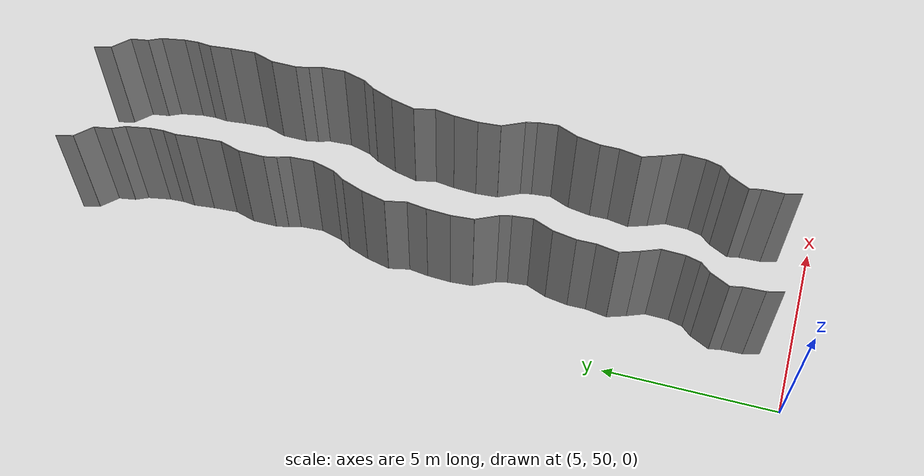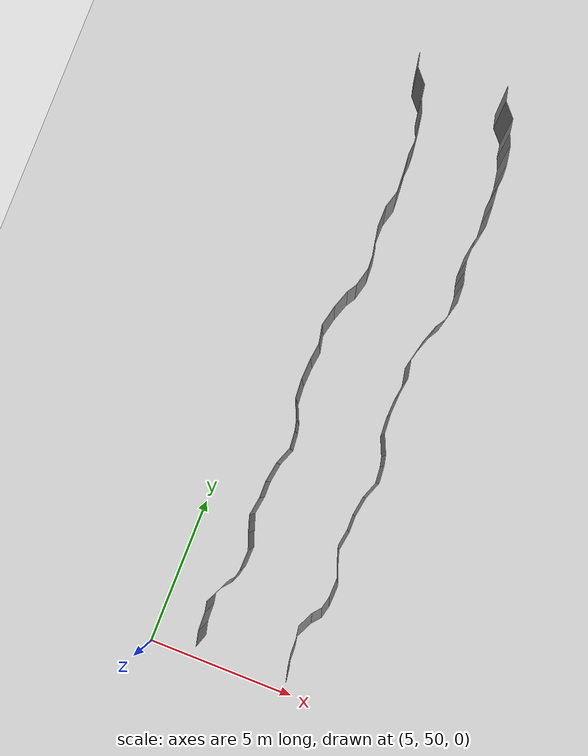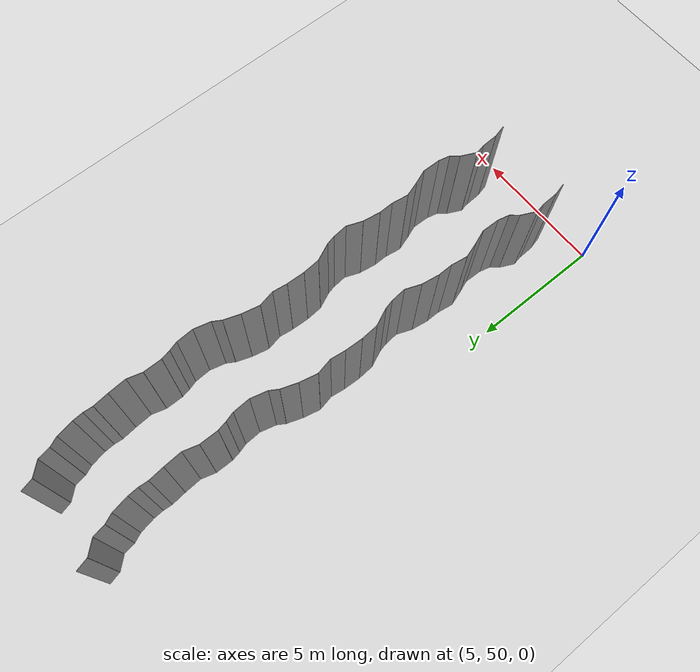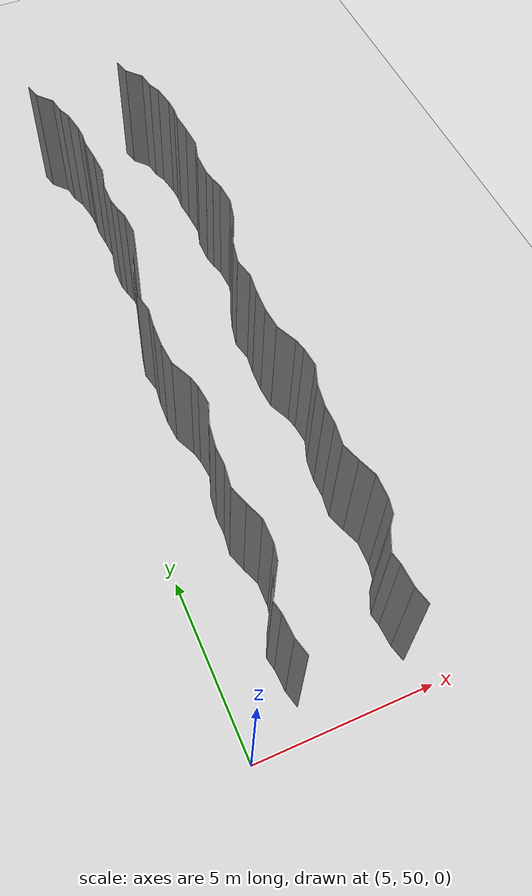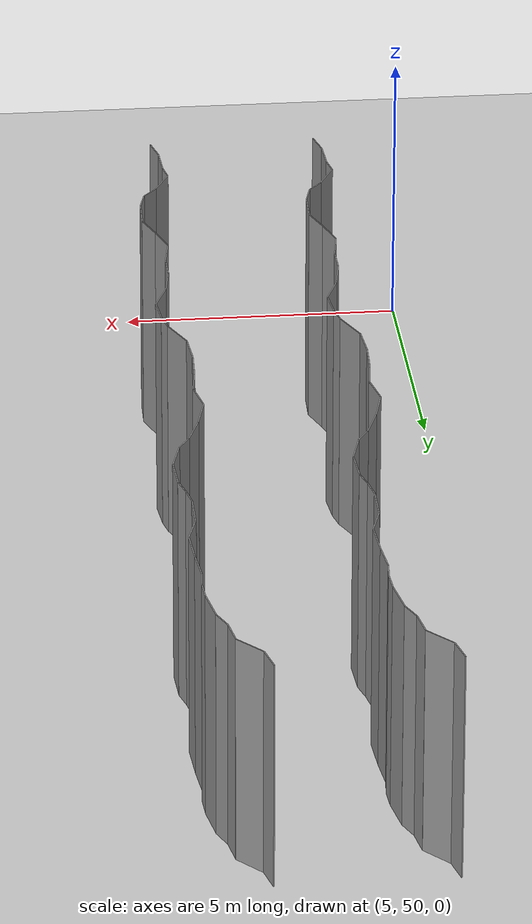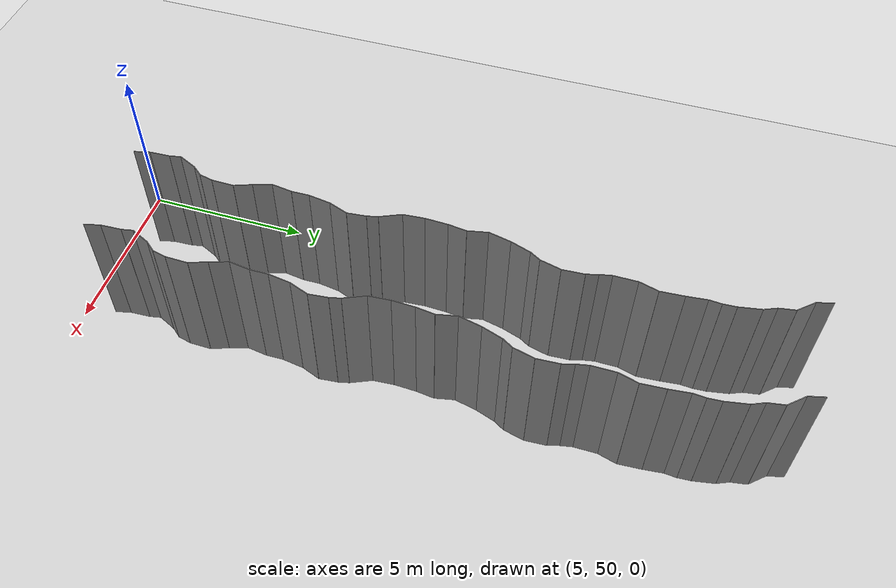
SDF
<sdf version="1.6">
 <world name="default">
  <model name="ground_plane">
   <static>1</static>
   <link name="link">
    <collision name="collision">
     <geometry><plane><normal>0 0 1</normal><size>200 200</size></plane></geometry>
     <surface><friction><ode><mu>100</mu><mu2>50</mu2></ode></friction></surface>
    </collision>
    <visual name="visual">
     <cast_shadows>0</cast_shadows>
     <geometry><plane><normal>0 0 1</normal><size>200 200</size></plane></geometry>
     <material>
      <script><uri>file://media/materials/scripts/gazebo.material</uri><name>Gazebo/Grey</name></script>
     </material>
    </visual>
   </link>
   <pose>0 100 0 0 -0 0</pose>
  </model>
  <model name="wall_224">
   <static>1</static>
   <pose>6.56225825882392 51.06435215421746 2 0 0 0.24001615985615504</pose>
   <link name="link">
    <collision name="collision"><geometry><box><size>0.02 0.481086561576 4</size></box></geometry></collision>
    <visual name="visual">
     <material>
      <script><name>Gazebo/Grey</name><uri>file://media/materials/scripts/gazebo.material</uri></script>
     </material>
     <geometry><box><size>0.02 0.481086561576 4</size></box></geometry>
    </visual>
   </link>
  </model>
  <model name="wall_225">
   <static>1</static>
   <pose>9.56225825882392 51.06435215421746 2 0 0 0.24001615985615504</pose>
   <link name="link">
    <collision name="collision"><geometry><box><size>0.02 0.481086561576 4</size></box></geometry></collision>
    <visual name="visual">
     <material>
      <script><name>Gazebo/Grey</name><uri>file://media/materials/scripts/gazebo.material</uri></script>
     </material>
     <geometry><box><size>0.02 0.481086561576 4</size></box></geometry>
    </visual>
   </link>
  </model>
  <model name="wall_226">
   <static>1</static>
   <pose>6.49260334359327 51.6056390805103 2 0 0 0.04052327693345277</pose>
   <link name="link">
    <collision name="collision"><geometry><box><size>0.02 0.61578358517 4</size></box></geometry></collision>
    <visual name="visual">
     <material>
      <script><name>Gazebo/Grey</name><uri>file://media/materials/scripts/gazebo.material</uri></script>
     </material>
     <geometry><box><size>0.02 0.61578358517 4</size></box></geometry>
    </visual>
   </link>
  </model>
  <model name="wall_227">
   <static>1</static>
   <pose>9.49260334359327 51.6056390805103 2 0 0 0.04052327693345277</pose>
   <link name="link">
    <collision name="collision"><geometry><box><size>0.02 0.61578358517 4</size></box></geometry></collision>
    <visual name="visual">
     <material>
      <script><name>Gazebo/Grey</name><uri>file://media/materials/scripts/gazebo.material</uri></script>
     </material>
     <geometry><box><size>0.02 0.61578358517 4</size></box></geometry>
    </visual>
   </link>
  </model>
  <model name="wall_228">
   <static>1</static>
   <pose>6.447315650950986 52.08109702309293 2 0 0 0.1930977729076564</pose>
   <link name="link">
    <collision name="collision"><geometry><box><size>0.02 0.341993965893 4</size></box></geometry></collision>
    <visual name="visual">
     <material>
      <script><name>Gazebo/Grey</name><uri>file://media/materials/scripts/gazebo.material</uri></script>
     </material>
     <geometry><box><size>0.02 0.341993965893 4</size></box></geometry>
    </visual>
   </link>
  </model>
  <model name="wall_229">
   <static>1</static>
   <pose>9.447315650950987 52.08109702309293 2 0 0 0.1930977729076564</pose>
   <link name="link">
    <collision name="collision"><geometry><box><size>0.02 0.341993965893 4</size></box></geometry></collision>
    <visual name="visual">
     <material>
      <script><name>Gazebo/Grey</name><uri>file://media/materials/scripts/gazebo.material</uri></script>
     </material>
     <geometry><box><size>0.02 0.341993965893 4</size></box></geometry>
    </visual>
   </link>
  </model>
  <model name="wall_230">
   <static>1</static>
   <pose>6.547434443843043 52.52884204708315 2 0 0 -0.4433556849081767</pose>
   <link name="link">
    <collision name="collision"><geometry><box><size>0.02 0.619773634317 4</size></box></geometry></collision>
    <visual name="visual">
     <material>
      <script><name>Gazebo/Grey</name><uri>file://media/materials/scripts/gazebo.material</uri></script>
     </material>
     <geometry><box><size>0.02 0.619773634317 4</size></box></geometry>
    </visual>
   </link>
  </model>
  <model name="wall_231">
   <static>1</static>
   <pose>9.547434443843043 52.52884204708315 2 0 0 -0.4433556849081767</pose>
   <link name="link">
    <collision name="collision"><geometry><box><size>0.02 0.619773634317 4</size></box></geometry></collision>
    <visual name="visual">
     <material>
      <script><name>Gazebo/Grey</name><uri>file://media/materials/scripts/gazebo.material</uri></script>
     </material>
     <geometry><box><size>0.02 0.619773634317 4</size></box></geometry>
    </visual>
   </link>
  </model>
  <model name="wall_232">
   <static>1</static>
   <pose>6.797629163466704 52.95053965869243 2 0 0 -0.6910583182861567</pose>
   <link name="link">
    <collision name="collision"><geometry><box><size>0.02 0.367964361672 4</size></box></geometry></collision>
    <visual name="visual">
     <material>
      <script><name>Gazebo/Grey</name><uri>file://media/materials/scripts/gazebo.material</uri></script>
     </material>
     <geometry><box><size>0.02 0.367964361672 4</size></box></geometry>
    </visual>
   </link>
  </model>
  <model name="wall_233">
   <static>1</static>
   <pose>9.797629163466704 52.95053965869243 2 0 0 -0.6910583182861567</pose>
   <link name="link">
    <collision name="collision"><geometry><box><size>0.02 0.367964361672 4</size></box></geometry></collision>
    <visual name="visual">
     <material>
      <script><name>Gazebo/Grey</name><uri>file://media/materials/scripts/gazebo.material</uri></script>
     </material>
     <geometry><box><size>0.02 0.367964361672 4</size></box></geometry>
    </visual>
   </link>
  </model>
  <model name="wall_234">
   <static>1</static>
   <pose>6.963732776983516 53.30040594770053 2 0 0 -0.2305374947672329</pose>
   <link name="link">
    <collision name="collision"><geometry><box><size>0.02 0.427499622501 4</size></box></geometry></collision>
    <visual name="visual">
     <material>
      <script><name>Gazebo/Grey</name><uri>file://media/materials/scripts/gazebo.material</uri></script>
     </material>
     <geometry><box><size>0.02 0.427499622501 4</size></box></geometry>
    </visual>
   </link>
  </model>
  <model name="wall_235">
   <static>1</static>
   <pose>9.963732776983516 53.30040594770053 2 0 0 -0.2305374947672329</pose>
   <link name="link">
    <collision name="collision"><geometry><box><size>0.02 0.427499622501 4</size></box></geometry></collision>
    <visual name="visual">
     <material>
      <script><name>Gazebo/Grey</name><uri>file://media/materials/scripts/gazebo.material</uri></script>
     </material>
     <geometry><box><size>0.02 0.427499622501 4</size></box></geometry>
    </visual>
   </link>
  </model>
  <model name="wall_236">
   <static>1</static>
   <pose>7.020929343543368 53.8430620365 2 0 0 -0.024966488987138633</pose>
   <link name="link">
    <collision name="collision"><geometry><box><size>0.02 0.669331200611 4</size></box></geometry></collision>
    <visual name="visual">
     <material>
      <script><name>Gazebo/Grey</name><uri>file://media/materials/scripts/gazebo.material</uri></script>
     </material>
     <geometry><box><size>0.02 0.669331200611 4</size></box></geometry>
    </visual>
   </link>
  </model>
  <model name="wall_237">
   <static>1</static>
   <pose>10.020929343543369 53.8430620365 2 0 0 -0.024966488987138633</pose>
   <link name="link">
    <collision name="collision"><geometry><box><size>0.02 0.669331200611 4</size></box></geometry></collision>
    <visual name="visual">
     <material>
      <script><name>Gazebo/Grey</name><uri>file://media/materials/scripts/gazebo.material</uri></script>
     </material>
     <geometry><box><size>0.02 0.669331200611 4</size></box></geometry>
    </visual>
   </link>
  </model>
  <model name="wall_238">
   <static>1</static>
   <pose>6.9326889899440705 54.43386539276456 2 0 0 0.36049443163937295</pose>
   <link name="link">
    <collision name="collision"><geometry><box><size>0.02 0.547688110757 4</size></box></geometry></collision>
    <visual name="visual">
     <material>
      <script><name>Gazebo/Grey</name><uri>file://media/materials/scripts/gazebo.material</uri></script>
     </material>
     <geometry><box><size>0.02 0.547688110757 4</size></box></geometry>
    </visual>
   </link>
  </model>
  <model name="wall_239">
   <static>1</static>
   <pose>9.93268898994407 54.43386539276456 2 0 0 0.36049443163937295</pose>
   <link name="link">
    <collision name="collision"><geometry><box><size>0.02 0.547688110757 4</size></box></geometry></collision>
    <visual name="visual">
     <material>
      <script><name>Gazebo/Grey</name><uri>file://media/materials/scripts/gazebo.material</uri></script>
     </material>
     <geometry><box><size>0.02 0.547688110757 4</size></box></geometry>
    </visual>
   </link>
  </model>
  <model name="wall_240">
   <static>1</static>
   <pose>6.748785485935234 54.95945755916199 2 0 0 0.3134587258671361</pose>
   <link name="link">
    <collision name="collision"><geometry><box><size>0.02 0.566294177525 4</size></box></geometry></collision>
    <visual name="visual">
     <material>
      <script><name>Gazebo/Grey</name><uri>file://media/materials/scripts/gazebo.material</uri></script>
     </material>
     <geometry><box><size>0.02 0.566294177525 4</size></box></geometry>
    </visual>
   </link>
  </model>
  <model name="wall_241">
   <static>1</static>
   <pose>9.748785485935233 54.95945755916199 2 0 0 0.3134587258671361</pose>
   <link name="link">
    <collision name="collision"><geometry><box><size>0.02 0.566294177525 4</size></box></geometry></collision>
    <visual name="visual">
     <material>
      <script><name>Gazebo/Grey</name><uri>file://media/materials/scripts/gazebo.material</uri></script>
     </material>
     <geometry><box><size>0.02 0.566294177525 4</size></box></geometry>
    </visual>
   </link>
  </model>
  <model name="wall_242">
   <static>1</static>
   <pose>6.708048242945149 55.54079714503761 2 0 0 -0.1481780724822791</pose>
   <link name="link">
    <collision name="collision"><geometry><box><size>0.02 0.630892453073 4</size></box></geometry></collision>
    <visual name="visual">
     <material>
      <script><name>Gazebo/Grey</name><uri>file://media/materials/scripts/gazebo.material</uri></script>
     </material>
     <geometry><box><size>0.02 0.630892453073 4</size></box></geometry>
    </visual>
   </link>
  </model>
  <model name="wall_243">
   <static>1</static>
   <pose>9.70804824294515 55.54079714503761 2 0 0 -0.1481780724822791</pose>
   <link name="link">
    <collision name="collision"><geometry><box><size>0.02 0.630892453073 4</size></box></geometry></collision>
    <visual name="visual">
     <material>
      <script><name>Gazebo/Grey</name><uri>file://media/materials/scripts/gazebo.material</uri></script>
     </material>
     <geometry><box><size>0.02 0.630892453073 4</size></box></geometry>
    </visual>
   </link>
  </model>
  <model name="wall_244">
   <static>1</static>
   <pose>6.751294237429779 56.12126729421162 2 0 0 0.012385196294548095</pose>
   <link name="link">
    <collision name="collision"><geometry><box><size>0.02 0.537002538394 4</size></box></geometry></collision>
    <visual name="visual">
     <material>
      <script><name>Gazebo/Grey</name><uri>file://media/materials/scripts/gazebo.material</uri></script>
     </material>
     <geometry><box><size>0.02 0.537002538394 4</size></box></geometry>
    </visual>
   </link>
  </model>
  <model name="wall_245">
   <static>1</static>
   <pose>9.751294237429779 56.12126729421162 2 0 0 0.012385196294548095</pose>
   <link name="link">
    <collision name="collision"><geometry><box><size>0.02 0.537002538394 4</size></box></geometry></collision>
    <visual name="visual">
     <material>
      <script><name>Gazebo/Grey</name><uri>file://media/materials/scripts/gazebo.material</uri></script>
     </material>
     <geometry><box><size>0.02 0.537002538394 4</size></box></geometry>
    </visual>
   </link>
  </model>
  <model name="wall_246">
   <static>1</static>
   <pose>6.799151793056622 56.72052430702623 2 0 0 -0.15351820116521392</pose>
   <link name="link">
    <collision name="collision"><geometry><box><size>0.02 0.669425649954 4</size></box></geometry></collision>
    <visual name="visual">
     <material>
      <script><name>Gazebo/Grey</name><uri>file://media/materials/scripts/gazebo.material</uri></script>
     </material>
     <geometry><box><size>0.02 0.669425649954 4</size></box></geometry>
    </visual>
   </link>
  </model>
  <model name="wall_247">
   <static>1</static>
   <pose>9.799151793056623 56.72052430702623 2 0 0 -0.15351820116521392</pose>
   <link name="link">
    <collision name="collision"><geometry><box><size>0.02 0.669425649954 4</size></box></geometry></collision>
    <visual name="visual">
     <material>
      <script><name>Gazebo/Grey</name><uri>file://media/materials/scripts/gazebo.material</uri></script>
     </material>
     <geometry><box><size>0.02 0.669425649954 4</size></box></geometry>
    </visual>
   </link>
  </model>
  <model name="wall_248">
   <static>1</static>
   <pose>6.959653735626903 57.338337803056625 2 0 0 -0.36389237350179215</pose>
   <link name="link">
    <collision name="collision"><geometry><box><size>0.02 0.614299540983 4</size></box></geometry></collision>
    <visual name="visual">
     <material>
      <script><name>Gazebo/Grey</name><uri>file://media/materials/scripts/gazebo.material</uri></script>
     </material>
     <geometry><box><size>0.02 0.614299540983 4</size></box></geometry>
    </visual>
   </link>
  </model>
  <model name="wall_249">
   <static>1</static>
   <pose>9.959653735626903 57.338337803056625 2 0 0 -0.36389237350179215</pose>
   <link name="link">
    <collision name="collision"><geometry><box><size>0.02 0.614299540983 4</size></box></geometry></collision>
    <visual name="visual">
     <material>
      <script><name>Gazebo/Grey</name><uri>file://media/materials/scripts/gazebo.material</uri></script>
     </material>
     <geometry><box><size>0.02 0.614299540983 4</size></box></geometry>
    </visual>
   </link>
  </model>
  <model name="wall_250">
   <static>1</static>
   <pose>7.042297827753471 57.911506073202794 2 0 0 0.09295759841057165</pose>
   <link name="link">
    <collision name="collision"><geometry><box><size>0.02 0.574743646551 4</size></box></geometry></collision>
    <visual name="visual">
     <material>
      <script><name>Gazebo/Grey</name><uri>file://media/materials/scripts/gazebo.material</uri></script>
     </material>
     <geometry><box><size>0.02 0.574743646551 4</size></box></geometry>
    </visual>
   </link>
  </model>
  <model name="wall_251">
   <static>1</static>
   <pose>10.04229782775347 57.911506073202794 2 0 0 0.09295759841057165</pose>
   <link name="link">
    <collision name="collision"><geometry><box><size>0.02 0.574743646551 4</size></box></geometry></collision>
    <visual name="visual">
     <material>
      <script><name>Gazebo/Grey</name><uri>file://media/materials/scripts/gazebo.material</uri></script>
     </material>
     <geometry><box><size>0.02 0.574743646551 4</size></box></geometry>
    </visual>
   </link>
  </model>
  <model name="wall_252">
   <static>1</static>
   <pose>6.977258953850956 58.359817805821585 2 0 0 0.23228096914473506</pose>
   <link name="link">
    <collision name="collision"><geometry><box><size>0.02 0.333312740051 4</size></box></geometry></collision>
    <visual name="visual">
     <material>
      <script><name>Gazebo/Grey</name><uri>file://media/materials/scripts/gazebo.material</uri></script>
     </material>
     <geometry><box><size>0.02 0.333312740051 4</size></box></geometry>
    </visual>
   </link>
  </model>
  <model name="wall_253">
   <static>1</static>
   <pose>9.977258953850956 58.359817805821585 2 0 0 0.23228096914473506</pose>
   <link name="link">
    <collision name="collision"><geometry><box><size>0.02 0.333312740051 4</size></box></geometry></collision>
    <visual name="visual">
     <material>
      <script><name>Gazebo/Grey</name><uri>file://media/materials/scripts/gazebo.material</uri></script>
     </material>
     <geometry><box><size>0.02 0.333312740051 4</size></box></geometry>
    </visual>
   </link>
  </model>
  <model name="wall_254">
   <static>1</static>
   <pose>6.7997138775122625 58.832477176896205 2 0 0 0.42142192220837027</pose>
   <link name="link">
    <collision name="collision"><geometry><box><size>0.02 0.680495242348 4</size></box></geometry></collision>
    <visual name="visual">
     <material>
      <script><name>Gazebo/Grey</name><uri>file://media/materials/scripts/gazebo.material</uri></script>
     </material>
     <geometry><box><size>0.02 0.680495242348 4</size></box></geometry>
    </visual>
   </link>
  </model>
  <model name="wall_255">
   <static>1</static>
   <pose>9.799713877512263 58.832477176896205 2 0 0 0.42142192220837027</pose>
   <link name="link">
    <collision name="collision"><geometry><box><size>0.02 0.680495242348 4</size></box></geometry></collision>
    <visual name="visual">
     <material>
      <script><name>Gazebo/Grey</name><uri>file://media/materials/scripts/gazebo.material</uri></script>
     </material>
     <geometry><box><size>0.02 0.680495242348 4</size></box></geometry>
    </visual>
   </link>
  </model>
  <model name="wall_256">
   <static>1</static>
   <pose>6.63759523629764 59.46377560983542 2 0 0 0.07137509578843834</pose>
   <link name="link">
    <collision name="collision"><geometry><box><size>0.02 0.643277229425 4</size></box></geometry></collision>
    <visual name="visual">
     <material>
      <script><name>Gazebo/Grey</name><uri>file://media/materials/scripts/gazebo.material</uri></script>
     </material>
     <geometry><box><size>0.02 0.643277229425 4</size></box></geometry>
    </visual>
   </link>
  </model>
  <model name="wall_257">
   <static>1</static>
   <pose>9.63759523629764 59.46377560983542 2 0 0 0.07137509578843834</pose>
   <link name="link">
    <collision name="collision"><geometry><box><size>0.02 0.643277229425 4</size></box></geometry></collision>
    <visual name="visual">
     <material>
      <script><name>Gazebo/Grey</name><uri>file://media/materials/scripts/gazebo.material</uri></script>
     </material>
     <geometry><box><size>0.02 0.643277229425 4</size></box></geometry>
    </visual>
   </link>
  </model>
  <model name="wall_258">
   <static>1</static>
   <pose>6.629017636577845 60.12231092375218 2 0 0 -0.04249508751031308</pose>
   <link name="link">
    <collision name="collision"><geometry><box><size>0.02 0.676041577106 4</size></box></geometry></collision>
    <visual name="visual">
     <material>
      <script><name>Gazebo/Grey</name><uri>file://media/materials/scripts/gazebo.material</uri></script>
     </material>
     <geometry><box><size>0.02 0.676041577106 4</size></box></geometry>
    </visual>
   </link>
  </model>
  <model name="wall_259">
   <static>1</static>
   <pose>9.629017636577846 60.12231092375218 2 0 0 -0.04249508751031308</pose>
   <link name="link">
    <collision name="collision"><geometry><box><size>0.02 0.676041577106 4</size></box></geometry></collision>
    <visual name="visual">
     <material>
      <script><name>Gazebo/Grey</name><uri>file://media/materials/scripts/gazebo.material</uri></script>
     </material>
     <geometry><box><size>0.02 0.676041577106 4</size></box></geometry>
    </visual>
   </link>
  </model>
  <model name="wall_260">
   <static>1</static>
   <pose>6.679100968507647 60.736229797234095 2 0 0 -0.1286234405438531</pose>
   <link name="link">
    <collision name="collision"><geometry><box><size>0.02 0.557007702911 4</size></box></geometry></collision>
    <visual name="visual">
     <material>
      <script><name>Gazebo/Grey</name><uri>file://media/materials/scripts/gazebo.material</uri></script>
     </material>
     <geometry><box><size>0.02 0.557007702911 4</size></box></geometry>
    </visual>
   </link>
  </model>
  <model name="wall_261">
   <static>1</static>
   <pose>9.679100968507647 60.736229797234095 2 0 0 -0.1286234405438531</pose>
   <link name="link">
    <collision name="collision"><geometry><box><size>0.02 0.557007702911 4</size></box></geometry></collision>
    <visual name="visual">
     <material>
      <script><name>Gazebo/Grey</name><uri>file://media/materials/scripts/gazebo.material</uri></script>
     </material>
     <geometry><box><size>0.02 0.557007702911 4</size></box></geometry>
    </visual>
   </link>
  </model>
  <model name="wall_262">
   <static>1</static>
   <pose>6.652723551951201 61.310569453298186 2 0 0 0.20536033551514865</pose>
   <link name="link">
    <collision name="collision"><geometry><box><size>0.02 0.60907088548 4</size></box></geometry></collision>
    <visual name="visual">
     <material>
      <script><name>Gazebo/Grey</name><uri>file://media/materials/scripts/gazebo.material</uri></script>
     </material>
     <geometry><box><size>0.02 0.60907088548 4</size></box></geometry>
    </visual>
   </link>
  </model>
  <model name="wall_263">
   <static>1</static>
   <pose>9.652723551951201 61.310569453298186 2 0 0 0.20536033551514865</pose>
   <link name="link">
    <collision name="collision"><geometry><box><size>0.02 0.60907088548 4</size></box></geometry></collision>
    <visual name="visual">
     <material>
      <script><name>Gazebo/Grey</name><uri>file://media/materials/scripts/gazebo.material</uri></script>
     </material>
     <geometry><box><size>0.02 0.60907088548 4</size></box></geometry>
    </visual>
   </link>
  </model>
  <model name="wall_264">
   <static>1</static>
   <pose>6.665437918512079 61.940855576386255 2 0 0 -0.22154806405851143</pose>
   <link name="link">
    <collision name="collision"><geometry><box><size>0.02 0.680942718749 4</size></box></geometry></collision>
    <visual name="visual">
     <material>
      <script><name>Gazebo/Grey</name><uri>file://media/materials/scripts/gazebo.material</uri></script>
     </material>
     <geometry><box><size>0.02 0.680942718749 4</size></box></geometry>
    </visual>
   </link>
  </model>
  <model name="wall_265">
   <static>1</static>
   <pose>9.66543791851208 61.940855576386255 2 0 0 -0.22154806405851143</pose>
   <link name="link">
    <collision name="collision"><geometry><box><size>0.02 0.680942718749 4</size></box></geometry></collision>
    <visual name="visual">
     <material>
      <script><name>Gazebo/Grey</name><uri>file://media/materials/scripts/gazebo.material</uri></script>
     </material>
     <geometry><box><size>0.02 0.680942718749 4</size></box></geometry>
    </visual>
   </link>
  </model>
  <model name="wall_266">
   <static>1</static>
   <pose>6.843786308592856 62.57130194199989 2 0 0 -0.3340722317419251</pose>
   <link name="link">
    <collision name="collision"><geometry><box><size>0.02 0.631506176773 4</size></box></geometry></collision>
    <visual name="visual">
     <material>
      <script><name>Gazebo/Grey</name><uri>file://media/materials/scripts/gazebo.material</uri></script>
     </material>
     <geometry><box><size>0.02 0.631506176773 4</size></box></geometry>
    </visual>
   </link>
  </model>
  <model name="wall_267">
   <static>1</static>
   <pose>9.843786308592856 62.57130194199989 2 0 0 -0.3340722317419251</pose>
   <link name="link">
    <collision name="collision"><geometry><box><size>0.02 0.631506176773 4</size></box></geometry></collision>
    <visual name="visual">
     <material>
      <script><name>Gazebo/Grey</name><uri>file://media/materials/scripts/gazebo.material</uri></script>
     </material>
     <geometry><box><size>0.02 0.631506176773 4</size></box></geometry>
    </visual>
   </link>
  </model>
  <model name="wall_268">
   <static>1</static>
   <pose>7.041118843463853 63.021533730495506 2 0 0 -0.5530897769795545</pose>
   <link name="link">
    <collision name="collision"><geometry><box><size>0.02 0.357114013326 4</size></box></geometry></collision>
    <visual name="visual">
     <material>
      <script><name>Gazebo/Grey</name><uri>file://media/materials/scripts/gazebo.material</uri></script>
     </material>
     <geometry><box><size>0.02 0.357114013326 4</size></box></geometry>
    </visual>
   </link>
  </model>
  <model name="wall_269">
   <static>1</static>
   <pose>10.041118843463853 63.021533730495506 2 0 0 -0.5530897769795545</pose>
   <link name="link">
    <collision name="collision"><geometry><box><size>0.02 0.357114013326 4</size></box></geometry></collision>
    <visual name="visual">
     <material>
      <script><name>Gazebo/Grey</name><uri>file://media/materials/scripts/gazebo.material</uri></script>
     </material>
     <geometry><box><size>0.02 0.357114013326 4</size></box></geometry>
    </visual>
   </link>
  </model>
  <model name="wall_270">
   <static>1</static>
   <pose>7.213840045166169 63.48270064453896 2 0 0 -0.2498846483598175</pose>
   <link name="link">
    <collision name="collision"><geometry><box><size>0.02 0.638288183593 4</size></box></geometry></collision>
    <visual name="visual">
     <material>
      <script><name>Gazebo/Grey</name><uri>file://media/materials/scripts/gazebo.material</uri></script>
     </material>
     <geometry><box><size>0.02 0.638288183593 4</size></box></geometry>
    </visual>
   </link>
  </model>
  <model name="wall_271">
   <static>1</static>
   <pose>10.213840045166169 63.48270064453896 2 0 0 -0.2498846483598175</pose>
   <link name="link">
    <collision name="collision"><geometry><box><size>0.02 0.638288183593 4</size></box></geometry></collision>
    <visual name="visual">
     <material>
      <script><name>Gazebo/Grey</name><uri>file://media/materials/scripts/gazebo.material</uri></script>
     </material>
     <geometry><box><size>0.02 0.638288183593 4</size></box></geometry>
    </visual>
   </link>
  </model>
  <model name="wall_272">
   <static>1</static>
   <pose>7.277076642365907 64.1186527961458 2 0 0 0.047971331086465376</pose>
   <link name="link">
    <collision name="collision"><geometry><box><size>0.02 0.654193328259 4</size></box></geometry></collision>
    <visual name="visual">
     <material>
      <script><name>Gazebo/Grey</name><uri>file://media/materials/scripts/gazebo.material</uri></script>
     </material>
     <geometry><box><size>0.02 0.654193328259 4</size></box></geometry>
    </visual>
   </link>
  </model>
  <model name="wall_273">
   <static>1</static>
   <pose>10.277076642365907 64.1186527961458 2 0 0 0.047971331086465376</pose>
   <link name="link">
    <collision name="collision"><geometry><box><size>0.02 0.654193328259 4</size></box></geometry></collision>
    <visual name="visual">
     <material>
      <script><name>Gazebo/Grey</name><uri>file://media/materials/scripts/gazebo.material</uri></script>
     </material>
     <geometry><box><size>0.02 0.654193328259 4</size></box></geometry>
    </visual>
   </link>
  </model>
  <model name="wall_274">
   <static>1</static>
   <pose>7.211667693054061 64.61707691689652 2 0 0 0.28187927036894506</pose>
   <link name="link">
    <collision name="collision"><geometry><box><size>0.02 0.357517129614 4</size></box></geometry></collision>
    <visual name="visual">
     <material>
      <script><name>Gazebo/Grey</name><uri>file://media/materials/scripts/gazebo.material</uri></script>
     </material>
     <geometry><box><size>0.02 0.357517129614 4</size></box></geometry>
    </visual>
   </link>
  </model>
  <model name="wall_275">
   <static>1</static>
   <pose>10.21166769305406 64.61707691689652 2 0 0 0.28187927036894506</pose>
   <link name="link">
    <collision name="collision"><geometry><box><size>0.02 0.357517129614 4</size></box></geometry></collision>
    <visual name="visual">
     <material>
      <script><name>Gazebo/Grey</name><uri>file://media/materials/scripts/gazebo.material</uri></script>
     </material>
     <geometry><box><size>0.02 0.357517129614 4</size></box></geometry>
    </visual>
   </link>
  </model>
  <model name="wall_276">
   <static>1</static>
   <pose>7.126485618738204 64.96793040108122 2 0 0 0.19540042588140866</pose>
   <link name="link">
    <collision name="collision"><geometry><box><size>0.02 0.365250178987 4</size></box></geometry></collision>
    <visual name="visual">
     <material>
      <script><name>Gazebo/Grey</name><uri>file://media/materials/scripts/gazebo.material</uri></script>
     </material>
     <geometry><box><size>0.02 0.365250178987 4</size></box></geometry>
    </visual>
   </link>
  </model>
  <model name="wall_277">
   <static>1</static>
   <pose>10.126485618738204 64.96793040108122 2 0 0 0.19540042588140866</pose>
   <link name="link">
    <collision name="collision"><geometry><box><size>0.02 0.365250178987 4</size></box></geometry></collision>
    <visual name="visual">
     <material>
      <script><name>Gazebo/Grey</name><uri>file://media/materials/scripts/gazebo.material</uri></script>
     </material>
     <geometry><box><size>0.02 0.365250178987 4</size></box></geometry>
    </visual>
   </link>
  </model>
  <model name="wall_278">
   <static>1</static>
   <pose>7.093115534758209 65.49599263288424 2 0 0 -0.005985056195786078</pose>
   <link name="link">
    <collision name="collision"><geometry><box><size>0.02 0.697837493426 4</size></box></geometry></collision>
    <visual name="visual">
     <material>
      <script><name>Gazebo/Grey</name><uri>file://media/materials/scripts/gazebo.material</uri></script>
     </material>
     <geometry><box><size>0.02 0.697837493426 4</size></box></geometry>
    </visual>
   </link>
  </model>
  <model name="wall_279">
   <static>1</static>
   <pose>10.093115534758208 65.49599263288424 2 0 0 -0.005985056195786078</pose>
   <link name="link">
    <collision name="collision"><geometry><box><size>0.02 0.697837493426 4</size></box></geometry></collision>
    <visual name="visual">
     <material>
      <script><name>Gazebo/Grey</name><uri>file://media/materials/scripts/gazebo.material</uri></script>
     </material>
     <geometry><box><size>0.02 0.697837493426 4</size></box></geometry>
    </visual>
   </link>
  </model>
  <model name="wall_280">
   <static>1</static>
   <pose>7.175135430556719 66.12389913230118 2 0 0 -0.2790253548032116</pose>
   <link name="link">
    <collision name="collision"><geometry><box><size>0.02 0.580436785221 4</size></box></geometry></collision>
    <visual name="visual">
     <material>
      <script><name>Gazebo/Grey</name><uri>file://media/materials/scripts/gazebo.material</uri></script>
     </material>
     <geometry><box><size>0.02 0.580436785221 4</size></box></geometry>
    </visual>
   </link>
  </model>
  <model name="wall_281">
   <static>1</static>
   <pose>10.175135430556718 66.12389913230118 2 0 0 -0.2790253548032116</pose>
   <link name="link">
    <collision name="collision"><geometry><box><size>0.02 0.580436785221 4</size></box></geometry></collision>
    <visual name="visual">
     <material>
      <script><name>Gazebo/Grey</name><uri>file://media/materials/scripts/gazebo.material</uri></script>
     </material>
     <geometry><box><size>0.02 0.580436785221 4</size></box></geometry>
    </visual>
   </link>
  </model>
  <model name="wall_282">
   <static>1</static>
   <pose>7.235223401132328 66.74866613694685 2 0 0 0.057326329785925424</pose>
   <link name="link">
    <collision name="collision"><geometry><box><size>0.02 0.692683879988 4</size></box></geometry></collision>
    <visual name="visual">
     <material>
      <script><name>Gazebo/Grey</name><uri>file://media/materials/scripts/gazebo.material</uri></script>
     </material>
     <geometry><box><size>0.02 0.692683879988 4</size></box></geometry>
    </visual>
   </link>
  </model>
  <model name="wall_283">
   <static>1</static>
   <pose>10.235223401132327 66.74866613694685 2 0 0 0.057326329785925424</pose>
   <link name="link">
    <collision name="collision"><geometry><box><size>0.02 0.692683879988 4</size></box></geometry></collision>
    <visual name="visual">
     <material>
      <script><name>Gazebo/Grey</name><uri>file://media/materials/scripts/gazebo.material</uri></script>
     </material>
     <geometry><box><size>0.02 0.692683879988 4</size></box></geometry>
    </visual>
   </link>
  </model>
  <model name="wall_284">
   <static>1</static>
   <pose>7.186191401515773 67.39029072169998 2 0 0 0.09834054998171839</pose>
   <link name="link">
    <collision name="collision"><geometry><box><size>0.02 0.594575879076 4</size></box></geometry></collision>
    <visual name="visual">
     <material>
      <script><name>Gazebo/Grey</name><uri>file://media/materials/scripts/gazebo.material</uri></script>
     </material>
     <geometry><box><size>0.02 0.594575879076 4</size></box></geometry>
    </visual>
   </link>
  </model>
  <model name="wall_285">
   <static>1</static>
   <pose>10.186191401515773 67.39029072169998 2 0 0 0.09834054998171839</pose>
   <link name="link">
    <collision name="collision"><geometry><box><size>0.02 0.594575879076 4</size></box></geometry></collision>
    <visual name="visual">
     <material>
      <script><name>Gazebo/Grey</name><uri>file://media/materials/scripts/gazebo.material</uri></script>
     </material>
     <geometry><box><size>0.02 0.594575879076 4</size></box></geometry>
    </visual>
   </link>
  </model>
  <model name="wall_286">
   <static>1</static>
   <pose>7.172518849103598 67.86388671969308 2 0 0 -0.08707208397521142</pose>
   <link name="link">
    <collision name="collision"><geometry><box><size>0.02 0.356840679739 4</size></box></geometry></collision>
    <visual name="visual">
     <material>
      <script><name>Gazebo/Grey</name><uri>file://media/materials/scripts/gazebo.material</uri></script>
     </material>
     <geometry><box><size>0.02 0.356840679739 4</size></box></geometry>
    </visual>
   </link>
  </model>
  <model name="wall_287">
   <static>1</static>
   <pose>10.172518849103598 67.86388671969308 2 0 0 -0.08707208397521142</pose>
   <link name="link">
    <collision name="collision"><geometry><box><size>0.02 0.356840679739 4</size></box></geometry></collision>
    <visual name="visual">
     <material>
      <script><name>Gazebo/Grey</name><uri>file://media/materials/scripts/gazebo.material</uri></script>
     </material>
     <geometry><box><size>0.02 0.356840679739 4</size></box></geometry>
    </visual>
   </link>
  </model>
  <model name="wall_288">
   <static>1</static>
   <pose>7.1776478655430545 68.23529682683784 2 0 0 0.05358124831194589</pose>
   <link name="link">
    <collision name="collision"><geometry><box><size>0.02 0.387888052907 4</size></box></geometry></collision>
    <visual name="visual">
     <material>
      <script><name>Gazebo/Grey</name><uri>file://media/materials/scripts/gazebo.material</uri></script>
     </material>
     <geometry><box><size>0.02 0.387888052907 4</size></box></geometry>
    </visual>
   </link>
  </model>
  <model name="wall_289">
   <static>1</static>
   <pose>10.177647865543054 68.23529682683784 2 0 0 0.05358124831194589</pose>
   <link name="link">
    <collision name="collision"><geometry><box><size>0.02 0.387888052907 4</size></box></geometry></collision>
    <visual name="visual">
     <material>
      <script><name>Gazebo/Grey</name><uri>file://media/materials/scripts/gazebo.material</uri></script>
     </material>
     <geometry><box><size>0.02 0.387888052907 4</size></box></geometry>
    </visual>
   </link>
  </model>
  <model name="wall_290">
   <static>1</static>
   <pose>7.1108058208360525 68.75194341958353 2 0 0 0.17304617019590793</pose>
   <link name="link">
    <collision name="collision"><geometry><box><size>0.02 0.655755620238 4</size></box></geometry></collision>
    <visual name="visual">
     <material>
      <script><name>Gazebo/Grey</name><uri>file://media/materials/scripts/gazebo.material</uri></script>
     </material>
     <geometry><box><size>0.02 0.655755620238 4</size></box></geometry>
    </visual>
   </link>
  </model>
  <model name="wall_291">
   <static>1</static>
   <pose>10.110805820836053 68.75194341958353 2 0 0 0.17304617019590793</pose>
   <link name="link">
    <collision name="collision"><geometry><box><size>0.02 0.655755620238 4</size></box></geometry></collision>
    <visual name="visual">
     <material>
      <script><name>Gazebo/Grey</name><uri>file://media/materials/scripts/gazebo.material</uri></script>
     </material>
     <geometry><box><size>0.02 0.655755620238 4</size></box></geometry>
    </visual>
   </link>
  </model>
  <model name="wall_292">
   <static>1</static>
   <pose>6.976161115488676 69.25239684452936 2 0 0 0.4149861254611293</pose>
   <link name="link">
    <collision name="collision"><geometry><box><size>0.02 0.387866404743 4</size></box></geometry></collision>
    <visual name="visual">
     <material>
      <script><name>Gazebo/Grey</name><uri>file://media/materials/scripts/gazebo.material</uri></script>
     </material>
     <geometry><box><size>0.02 0.387866404743 4</size></box></geometry>
    </visual>
   </link>
  </model>
  <model name="wall_293">
   <static>1</static>
   <pose>9.976161115488676 69.25239684452936 2 0 0 0.4149861254611293</pose>
   <link name="link">
    <collision name="collision"><geometry><box><size>0.02 0.387866404743 4</size></box></geometry></collision>
    <visual name="visual">
     <material>
      <script><name>Gazebo/Grey</name><uri>file://media/materials/scripts/gazebo.material</uri></script>
     </material>
     <geometry><box><size>0.02 0.387866404743 4</size></box></geometry>
    </visual>
   </link>
  </model>
  <model name="wall_294">
   <static>1</static>
   <pose>6.858741133054594 69.6698933336756 2 0 0 0.16201169718142477</pose>
   <link name="link">
    <collision name="collision"><geometry><box><size>0.02 0.486417674974 4</size></box></geometry></collision>
    <visual name="visual">
     <material>
      <script><name>Gazebo/Grey</name><uri>file://media/materials/scripts/gazebo.material</uri></script>
     </material>
     <geometry><box><size>0.02 0.486417674974 4</size></box></geometry>
    </visual>
   </link>
  </model>
  <model name="wall_295">
   <static>1</static>
   <pose>9.858741133054593 69.6698933336756 2 0 0 0.16201169718142477</pose>
   <link name="link">
    <collision name="collision"><geometry><box><size>0.02 0.486417674974 4</size></box></geometry></collision>
    <visual name="visual">
     <material>
      <script><name>Gazebo/Grey</name><uri>file://media/materials/scripts/gazebo.material</uri></script>
     </material>
     <geometry><box><size>0.02 0.486417674974 4</size></box></geometry>
    </visual>
   </link>
  </model>
  <model name="wall_296">
   <static>1</static>
   <pose>6.618230104141327 70.13476234791025 2 0 0 0.730154881882266</pose>
   <link name="link">
    <collision name="collision"><geometry><box><size>0.02 0.603553261685 4</size></box></geometry></collision>
    <visual name="visual">
     <material>
      <script><name>Gazebo/Grey</name><uri>file://media/materials/scripts/gazebo.material</uri></script>
     </material>
     <geometry><box><size>0.02 0.603553261685 4</size></box></geometry>
    </visual>
   </link>
  </model>
  <model name="wall_297">
   <static>1</static>
   <pose>9.618230104141327 70.13476234791025 2 0 0 0.730154881882266</pose>
   <link name="link">
    <collision name="collision"><geometry><box><size>0.02 0.603553261685 4</size></box></geometry></collision>
    <visual name="visual">
     <material>
      <script><name>Gazebo/Grey</name><uri>file://media/materials/scripts/gazebo.material</uri></script>
     </material>
     <geometry><box><size>0.02 0.603553261685 4</size></box></geometry>
    </visual>
   </link>
  </model>
  <model name="wall_298">
   <static>1</static>
   <pose>6.359408183055775 70.59228208854728 2 0 0 0.24243981031910664</pose>
   <link name="link">
    <collision name="collision"><geometry><box><size>0.02 0.479368449787 4</size></box></geometry></collision>
    <visual name="visual">
     <material>
      <script><name>Gazebo/Grey</name><uri>file://media/materials/scripts/gazebo.material</uri></script>
     </material>
     <geometry><box><size>0.02 0.479368449787 4</size></box></geometry>
    </visual>
   </link>
  </model>
  <model name="wall_299">
   <static>1</static>
   <pose>9.359408183055775 70.59228208854728 2 0 0 0.24243981031910664</pose>
   <link name="link">
    <collision name="collision"><geometry><box><size>0.02 0.479368449787 4</size></box></geometry></collision>
    <visual name="visual">
     <material>
      <script><name>Gazebo/Grey</name><uri>file://media/materials/scripts/gazebo.material</uri></script>
     </material>
     <geometry><box><size>0.02 0.479368449787 4</size></box></geometry>
    </visual>
   </link>
  </model>
 </world>
</sdf>
